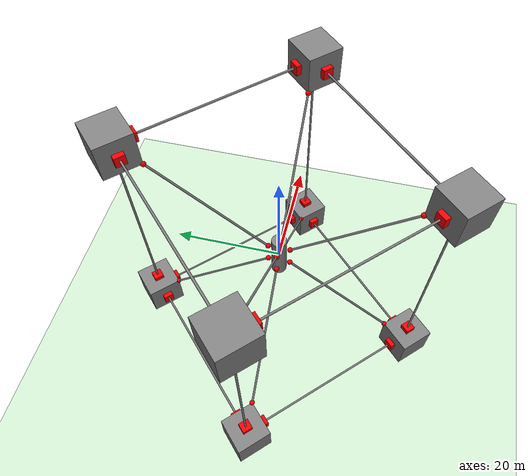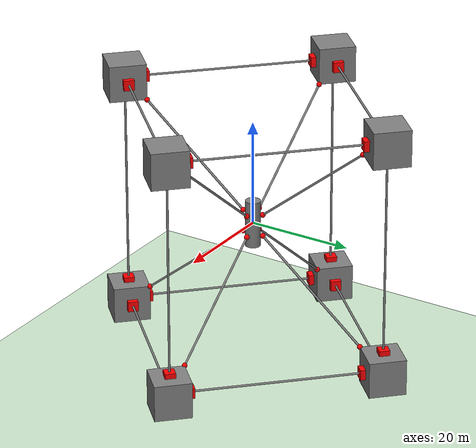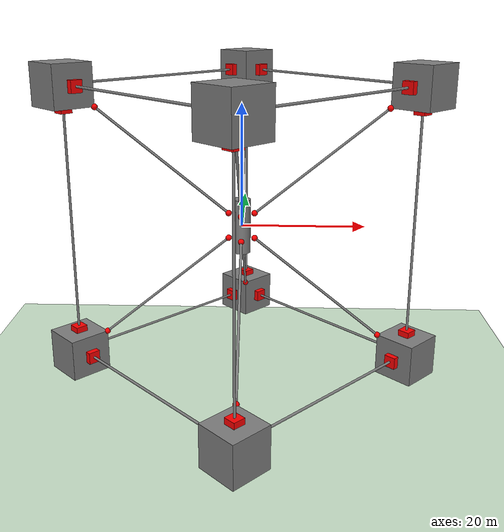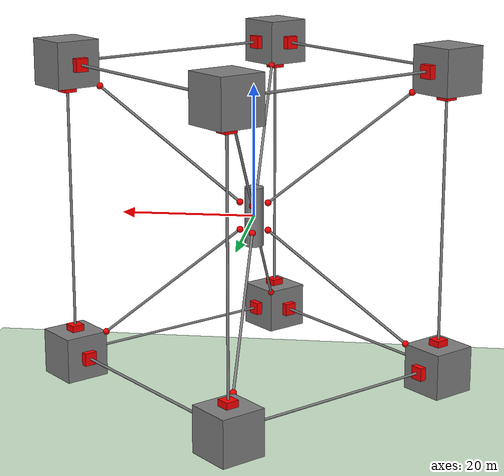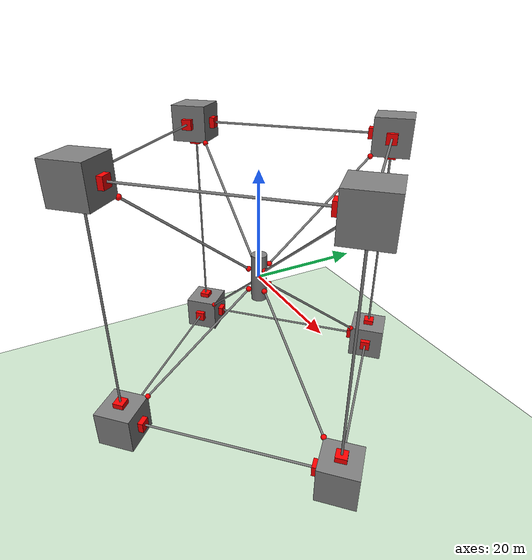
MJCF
<mujoco model="TT (v1.31)">
    <compiler angle="degree" coordinate="local" inertiafromgeom="true">
        <lengthrange timestep="0.001"/>
    </compiler>

    <option timestep="0.001"
            gravity="0 0 -9.81"
            solver="Newton"
            integrator="Euler"
            iterations="100">
        <flag sensornoise="disable"
              warmstart="disable"
              frictionloss="enable"/>
    </option>

    <visual>
        <global offwidth="1024" offheight="768"/>
    </visual>

    <default class='tensegrity'>
        <geom condim="6" material="geom" rgba="1 .84 0 1" size="0.5"
              density="1000" friction="1.000 1.0 1.0" solref="-10000 -20" solimp="0.9 0.95 0.001 0.5 2"/>
        <site type="sphere" size="0.005"/>
        <tendon width="0.05" rgba="1 0 0 1" frictionloss='0' damping="10" stiffness="1000"/>
        <joint type="ball" limited="true" range="0 10" damping="100000" armature="1" />
        <position ctrllimited="true" ctrlrange="-300 100" kp="50"/>
    </default>

    <asset>
        <texture name='a' builtin="gradient" height="100" rgb1="1 1 1" rgb2="0 0 0" type="skybox"
                 width="100"/>
        <texture builtin="flat" height="1278" mark="cross" markrgb="1 1 1" name="texgeom"
                 random="0.01" rgb1="0.8 0.6 0.4" rgb2="0.8 0.6 0.4" type="cube" width="127"/>
        <texture builtin="checker" height="100" name="texplane" rgb1="0 0 0" rgb2="0.8 0.8 0.8"
                 type="2d" width="100"/>
        <material name="MatPlane" reflectance="0.5" shininess="1" specular="1" texrepeat="30 30"
                  texture="texplane"/>
        <material name="geom" texture="texgeom" texuniform="true"/>
    </asset>

    <worldbody>

        <light name='mylight' cutoff="100" diffuse="1 1 1" dir="-0 0 -1.3" directional="true" exponent="1"
               pos="0 0 1.3" specular=".1 .1 .1"/>
        <geom conaffinity="1" material="MatPlane" name="floor" pos="0 0 -40"
              rgba="0.8 0.9 0.8 1" size="400 400 0.1" type="plane"/>

        <camera name="camera" pos="0 -80 50" axisangle="1 0 0 90"/>

        <!-- ======= RODS ======= -->
        <body name="center">
            <geom name="center"
                  size="1.44 4.5041"
                  type="cylinder"
                  mass="160"/>
            <site
                name="site_c01"
                type="sphere"
                pos="2.1213203436 0 2.1213203436"
                rgba="1 0 0 1"
                size=".5 .5"/>
            <site
                name="site_c02"
                type="sphere"
                pos="2.1213203436 0 -2.1213203436"
                rgba="1 0 0 1"
                size="0.5 0.5"/>
            <site
                name="site_c03"
                type="sphere"
                pos="-2.1213203436 0 -2.1213203436"
                rgba="1 0 0 1"
                size="0.5 0.5"/>
            <site
                name="site_c04"
                type="sphere"
                pos="-2.1213203436 0 2.1213203436"
                rgba="1 0 0 1"
                size="0.5 0.5"/>
            <site
                name="site_c11"
                type="sphere"
                pos="0 2.1213203436 2.1213203436"
                rgba="1 0 0 1"
                size="0.5 0.5"/>
            <site
                name="site_c12"
                type="sphere"
                pos="0 2.1213203436 -2.1213203436"
                rgba="1 0 0 1"
                size="0.5 0.5"/>
            <site
                name="site_c13"
                type="sphere"
                pos="0 -2.1213203436 -2.1213203436"
                rgba="1 0 0 1"
                size="0.5 0.5"/>
            <site
                name="site_c14"
                type="sphere"
                pos="0 -2.1213203436 2.1213203436"
                rgba="1 0 0 1"
                size="0.5 0.5"/>
            <body name="r01" >
                <joint name="joint_01"
                    type="ball"
                    pos="0 0 0"/>
                <body name="r01_cap"
                    pos="28.07974746831 0 22.78"
                    euler="0 0 45">
                    <geom name="r01_cap_geom"
                      size="3.5 3.5 3.5"
                      type="box"
                      mass="130"/>
                    <site
                        name="r01_cap_site"
                        type="sphere"
                        pos="-3.5 3.5 -3.5"
                        rgba="1 0 0 1"
                        size="0.5 0.5"/>
                    <site
                        name="site_01_x"
                        type="box"
                        pos="-3.5 0 0"
                        rgba="1 0 0 1"
                        size="1 1 1"/>
                    <site
                        name="site_01_y"
                        type="box"
                        pos="0 3.5 0"
                        rgba="1 0 0 1"
                        size="1 1 1"/>
                    <site
                        name="site_01_z"
                        type="box"
                        pos="0 0 -3.5"
                        rgba="1 0 0 1"
                        size="1 1 1"/>
                </body>
                <site
                    name="site_01"
                    type="box"
                    pos="28.07974746831 0 22.78"
                    rgba="1 0 0 1"
                    size="1 1 1"/>
            </body>
            <body name="r02" >
                <joint name="joint_02"
                    type="ball"
                    pos="0 0 0"/>
                <body name="r02_cap"
                    pos="28.07974746831 0 -22.78"
                    euler="0 0 45">
                    <geom name="r02_cap_geom"
                      size="3.5 3.5 3.5"
                      type="box"
                      mass="130"/>
                    <site
                        name="r02_cap_site"
                        type="sphere"
                        pos="-3.5 3.5 3.5"
                        rgba="1 0 0 1"
                        size="0.5 0.5"/>
                    <site
                        name="site_02_x"
                        type="box"
                        pos="-3.5 0 0"
                        rgba="1 0 0 1"
                        size="1 1 1"/>
                    <site
                        name="site_02_y"
                        type="box"
                        pos="0 3.5 0"
                        rgba="1 0 0 1"
                        size="1 1 1"/>
                    <site
                        name="site_02_z"
                        type="box"
                        pos="0 0 3.5"
                        rgba="1 0 0 1"
                        size="1 1 1"/>
                </body>
                <site
                    name="site_02"
                    type="box"
                    pos="28.07974746831 0 -22.78"
                    rgba="1 0 0 1"
                    size="1 1 1"/>
            </body>
            <body name="r03" >
                <body name="r03_cap"
                    pos="-28.07974746831 0 -22.78"
                    euler="0 0 45">
                    <geom name="r03_cap_geom"
                      size="3.5 3.5 3.5"
                      type="box"
                      mass="130"/>
                    <site
                        name="r03_cap_site"
                        type="sphere"
                        pos="3.5 -3.5 3.5"
                        rgba="1 0 0 1"
                        size="0.5 0.5"/>
                    <site
                        name="site_03_x"
                        type="box"
                        pos="3.5 0 0"
                        rgba="1 0 0 1"
                        size="1 1 1"/>
                    <site
                        name="site_03_y"
                        type="box"
                        pos="0 -3.5 0"
                        rgba="1 0 0 1"
                        size="1 1 1"/>
                    <site
                        name="site_03_z"
                        type="box"
                        pos="0 0 3.5"
                        rgba="1 0 0 1"
                        size="1 1 1"/>
                </body>
                <site
                    name="site_03"
                    type="box"
                    pos="-28.07974746831 0 -22.78"
                    rgba="1 0 0 1"
                    size="1 1 1"/>
            </body>
            <body name="r04" >
                <body name="r04_cap"
                    pos="-28.07974746831 0 22.78"
                    euler="0 0 45">
                    <geom name="r04_cap_geom"
                      size="3.5 3.5 3.5"
                      type="box"
                      mass="130"/>
                    <site
                        name="r04_cap_site"
                        type="sphere"
                        pos="3.5 -3.5 -3.5"
                        rgba="1 0 0 1"
                        size="0.5 0.5"/>
                    <site
                        name="site_04_x"
                        type="box"
                        pos="3.5 0 0"
                        rgba="1 0 0 1"
                        size="1 1 1"/>
                    <site
                        name="site_04_y"
                        type="box"
                        pos="0 -3.5 0"
                        rgba="1 0 0 1"
                        size="1 1 1"/>
                    <site
                        name="site_04_z"
                        type="box"
                        pos="0 0 -3.5"
                        rgba="1 0 0 1"
                        size="1 1 1"/>
                </body>
                <site
                    name="site_04"
                    type="box"
                    pos="-28.07974746831 0 22.78"
                    rgba="1 0 0 1"
                    size="1 1 1"/>
            </body>
            <body name="r11" >
                <body name="r11_cap"
                    pos="0 28.07974746831 22.78"
                    euler="0 0 45">
                    <geom name="r11_cap_geom"
                      size="3.5 3.5 3.5"
                      type="box"
                      mass="130"/>
                    <site
                        name="r11_cap_site"
                        type="sphere"
                        pos="-3.5 -3.5 -3.5"
                        rgba="1 0 0 1"
                        size="0.5 0.5"/>
                    <site
                        name="site_11_x"
                        type="box"
                        pos="-3.5 0 0"
                        rgba="1 0 0 1"
                        size="1 1 1"/>
                    <site
                        name="site_11_y"
                        type="box"
                        pos="0 -3.5 0"
                        rgba="1 0 0 1"
                        size="1 1 1"/>
                    <site
                        name="site_11_z"
                        type="box"
                        pos="0 0 -3.5"
                        rgba="1 0 0 1"
                        size="1 1 1"/>
                </body>
                <site
                    name="site_11"
                    type="box"
                    pos="0 28.07974746831 22.78"
                    rgba="1 0 0 1"
                    size="1 1 1"/>
            </body>
            <body name="r12" >
                <body name="r12_cap"
                    pos="0 28.07974746831 -22.78"
                    euler="0 0 45">
                    <geom name="r12_cap_geom"
                      size="3.5 3.5 3.5"
                      type="box"
                      mass="130"/>
                    <site
                        name="r12_cap_site"
                        type="sphere"
                        pos="-3.5 -3.5 3.5"
                        rgba="1 0 0 1"
                        size="0.5 0.5"/>
                    <site
                        name="site_12_x"
                        type="box"
                        pos="-3.5 0 0"
                        rgba="1 0 0 1"
                        size="1 1 1"/>
                    <site
                        name="site_12_y"
                        type="box"
                        pos="0 -3.5 0"
                        rgba="1 0 0 1"
                        size="1 1 1"/>
                    <site
                        name="site_12_z"
                        type="box"
                        pos="0 0 3.5"
                        rgba="1 0 0 1"
                        size="1 1 1"/>
                </body>
                <site
                    name="site_12"
                    type="box"
                    pos="0 28.07974746831 -22.78"
                    rgba="1 0 0 1"
                    size="1 1 1"/>
            </body>
                <body name="r13_cap"
                    pos="0 -28.07974746831 -22.78"
                    euler="0 0 45">
                    <geom name="r13_cap_geom"
                      size="3.5 3.5 3.5"
                      type="box"
                      mass="130"/>
                    <site
                        name="r13_cap_site"
                        type="sphere"
                        pos="3.5 3.5 3.5"
                        rgba="1 0 0 1"
                        size="0.5 0.5"/>
                    <site
                        name="site_13_x"
                        type="box"
                        pos="3.5 0 0"
                        rgba="1 0 0 1"
                        size="1 1 1"/>
                    <site
                        name="site_13_y"
                        type="box"
                        pos="0 3.5 0"
                        rgba="1 0 0 1"
                        size="1 1 1"/>
                    <site
                        name="site_13_z"
                        type="box"
                        pos="0 0 3.5"
                        rgba="1 0 0 1"
                        size="1 1 1"/>
            </body>
            <body name="r14_cap"
                pos="0 -28.07974746831 22.78"
                euler="0 0 45">
                <geom name="r14_cap_geom"
                  size="3.5 3.5 3.5"
                  type="box"
                  mass="130"/>
                <site
                    name="r14_cap_site"
                    type="sphere"
                    pos="3.5 3.5 -3.5"
                    rgba="1 0 0 1"
                    size="0.5 0.5"/>
                <site
                    name="site_14_x"
                    type="box"
                    pos="3.5 0 0"
                    rgba="1 0 0 1"
                    size="1 1 1"/>
                <site
                    name="site_14_y"
                    type="box"
                    pos="0 3.5 0"
                    rgba="1 0 0 1"
                    size="1 1 1"/>
                <site
                    name="site_14_z"
                    type="box"
                    pos="0 0 -3.5"
                    rgba="1 0 0 1"
                    size="1 1 1"/>
            </body>
        </body>
    </worldbody>
    <tendon>
        <!-- Tendons on XZ plane -->
        <spatial name="tendon_01_02" width="0.2">
            <site site="site_01_z"/>
            <site site="site_02_z"/>
        </spatial>
        <spatial name="tendon_03_04" width="0.2">
            <site site="site_03_z"/>
            <site site="site_04_z"/>
        </spatial>
        <!-- Tendons on YZ plane -->
        <spatial name="tendon_11_12" width="0.2">
            <site site="site_11_z"/>
            <site site="site_12_z"/>
        </spatial>
        <spatial name="tendon_13_14" width="0.2">
            <site site="site_13_z"/>
            <site site="site_14_z"/>
        </spatial>
        <!-- Tendons on Z+ plane -->
        <spatial name="tendon_01_11" width="0.2">
            <site site="site_01_y"/>
            <site site="site_11_y"/>
        </spatial>
        <spatial name="tendon_01_14" width="0.2">
            <site site="site_01_x"/>
            <site site="site_14_x"/>
        </spatial>
        <spatial name="tendon_04_14" width="0.2">
            <site site="site_04_y"/>
            <site site="site_14_y"/>
        </spatial>
        <spatial name="tendon_04_11" width="0.2">
            <site site="site_04_x"/>
            <site site="site_11_x"/>
        </spatial>
        <!-- Tendons on Z- plane -->
        <spatial name="tendon_02_12" width="0.2">
            <site site="site_02_y"/>
            <site site="site_12_y"/>
        </spatial>
        <spatial name="tendon_02_13" width="0.2">
            <site site="site_02_x"/>
            <site site="site_13_x"/>
        </spatial>
        <spatial name="tendon_03_13" width="0.2">
            <site site="site_03_y"/>
            <site site="site_13_y"/>
        </spatial>
        <spatial name="tendon_03_12" width="0.2">
            <site site="site_03_x"/>
            <site site="site_12_x"/>
        </spatial>

        <spatial name="tendon_c01" width="0.2">
            <site site="site_c01"/>
            <site site="r01_cap_site"/>
        </spatial>
        <spatial name="tendon_c02" width="0.2">
            <site site="site_c02"/>
            <site site="r02_cap_site"/>
        </spatial>
        <spatial name="tendon_c03" width="0.2">
            <site site="site_c03"/>
            <site site="r03_cap_site"/>
        </spatial>
        <spatial name="tendon_c04" width="0.2">
            <site site="site_c04"/>
            <site site="r04_cap_site"/>
        </spatial>

        <spatial name="tendon_c11" width="0.2">
            <site site="site_c11"/>
            <site site="r11_cap_site"/>
        </spatial>
        <spatial name="tendon_c12" width="0.2">
            <site site="site_c12"/>
            <site site="r12_cap_site"/>
        </spatial>
        <spatial name="tendon_c13" width="0.2">
            <site site="site_c13"/>
            <site site="r13_cap_site"/>
        </spatial>
        <spatial name="tendon_c14" width="0.2">
            <site site="site_c14"/>
            <site site="r14_cap_site"/>
        </spatial>
    </tendon>
    <actuator>
        <!-- Tendons on XZ plane -->
        <position name="u_01_02" tendon="tendon_01_02" ctrllimited="true" ctrlrange="-2000 300" />
        <position name="u_03_04" tendon="tendon_03_04" ctrllimited="true" ctrlrange="-900 300" />
        <!-- Tendons on YZ plane -->
        <position name="u_11_12" tendon="tendon_11_12" ctrllimited="true" ctrlrange="-900 300" />
        <position name="u_13_14" tendon="tendon_13_14" ctrllimited="true" ctrlrange="-900 300" />
        <!-- Tendons on Z+ plane -->
        <position name="u_01_11" tendon="tendon_01_11" ctrllimited="true" ctrlrange="-900 300" />
        <position name="u_01_14" tendon="tendon_01_14" ctrllimited="true" ctrlrange="-900 300" />
        <position name="u_04_11" tendon="tendon_04_11" ctrllimited="true" ctrlrange="-900 300" />
        <position name="u_04_14" tendon="tendon_04_14" ctrllimited="true" ctrlrange="-900 300" />
        <!-- Tendons on Z- plane -->
        <position name="u_02_12" tendon="tendon_02_12" ctrllimited="true" ctrlrange="-900 300" />
        <position name="u_02_13" tendon="tendon_02_13" ctrllimited="true" ctrlrange="-900 300" />
        <position name="u_03_12" tendon="tendon_03_12" ctrllimited="true" ctrlrange="-900 300" />
        <position name="u_03_13" tendon="tendon_03_13" ctrllimited="true" ctrlrange="-900 300"/>
    </actuator>
    <sensor>
        <!-- Tendons on XZ plane -->
        <tendonpos name="sensor_01_02" tendon="tendon_01_02" />
        <tendonpos name="sensor_03_04" tendon="tendon_03_04" />
        <!-- Tendons on YZ plane -->
        <tendonpos name="sensor_11_12" tendon="tendon_11_12" />
        <tendonpos name="sensor_13_14" tendon="tendon_13_14" />
        <!-- Tendons on Z+ plane -->
        <tendonpos name="sensor_01_11" tendon="tendon_01_11" />
        <tendonpos name="sensor_01_14" tendon="tendon_01_14" />
        <tendonpos name="sensor_04_11" tendon="tendon_04_11" />
        <tendonpos name="sensor_04_14" tendon="tendon_04_14" />
        <!-- Tendons on Z- plane -->
        <tendonpos name="sensor_02_12" tendon="tendon_02_12" />
        <tendonpos name="sensor_02_13" tendon="tendon_02_13" />
        <tendonpos name="sensor_03_12" tendon="tendon_03_12" />
        <tendonpos name="sensor_03_13" tendon="tendon_03_13" />

        <framepos name="end_cup_01" objtype="geom" objname="r01_cap_geom"/>
        <framepos name="end_cup_02" objtype="geom" objname="r02_cap_geom"/>
        <framepos name="end_cup_03" objtype="geom" objname="r03_cap_geom"/>
        <framepos name="end_cup_04" objtype="geom" objname="r04_cap_geom"/>
        <framepos name="end_cup_11" objtype="geom" objname="r11_cap_geom"/>
        <framepos name="end_cup_12" objtype="geom" objname="r12_cap_geom"/>
        <framepos name="end_cup_13" objtype="geom" objname="r13_cap_geom"/>
        <framepos name="end_cup_14" objtype="geom" objname="r14_cap_geom"/>
    </sensor>
</mujoco>
